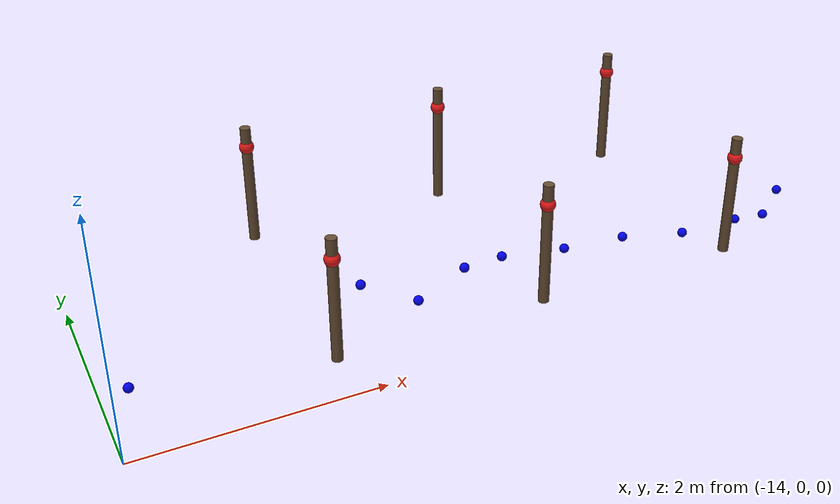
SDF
<sdf version="1.9">
 <world name="empty">
  <model name="row1_post_neg_4">
   <static>true</static>
   <pose>-8 1.1 -0.5 0 0 0</pose>
   <link name="vine_link">
    <collision name="post_collision">
     <geometry><cylinder><radius>0.05</radius><length>1.2</length></cylinder></geometry>
     <pose>0 0 0.6 0 0 0</pose>
    </collision>
    <visual name="post_visual">
     <geometry><cylinder><radius>0.05</radius><length>1.2</length></cylinder></geometry>
     <pose>0 0 0.6 0 0 0</pose>
     <material><diffuse>0.4 0.3 0.2 1</diffuse><ambient>0.4 0.3 0.2 1</ambient></material>
    </visual>
    <collision name="ball_collision">
     <geometry><sphere><radius>0.07</radius></sphere></geometry>
     <pose>0 0 1.0 0 0 0</pose>
    </collision>
    <visual name="ball_visual">
     <geometry><sphere><radius>0.07</radius></sphere></geometry>
     <pose>0 0 1.0 0 0 0</pose>
     <material><diffuse>0.9 0.1 0.1 1</diffuse><ambient>0.9 0.1 0.1 1</ambient></material>
    </visual>
   </link>
  </model>
  <model name="row1_post_neg_5">
   <static>true</static>
   <pose>-10 1.1 -0.5 0 0 0</pose>
   <link name="vine_link">
    <collision name="post_collision">
     <geometry><cylinder><radius>0.05</radius><length>1.2</length></cylinder></geometry>
     <pose>0 0 0.6 0 0 0</pose>
    </collision>
    <visual name="post_visual">
     <geometry><cylinder><radius>0.05</radius><length>1.2</length></cylinder></geometry>
     <pose>0 0 0.6 0 0 0</pose>
     <material><diffuse>0.4 0.3 0.2 1</diffuse><ambient>0.4 0.3 0.2 1</ambient></material>
    </visual>
    <collision name="ball_collision">
     <geometry><sphere><radius>0.07</radius></sphere></geometry>
     <pose>0 0 1.0 0 0 0</pose>
    </collision>
    <visual name="ball_visual">
     <geometry><sphere><radius>0.07</radius></sphere></geometry>
     <pose>0 0 1.0 0 0 0</pose>
     <material><diffuse>0.9 0.1 0.1 1</diffuse><ambient>0.9 0.1 0.1 1</ambient></material>
    </visual>
   </link>
  </model>
  <model name="row1_post_neg_6">
   <static>true</static>
   <pose>-12 1.1 -0.5 0 0 0</pose>
   <link name="vine_link">
    <collision name="post_collision">
     <geometry><cylinder><radius>0.05</radius><length>1.2</length></cylinder></geometry>
     <pose>0 0 0.6 0 0 0</pose>
    </collision>
    <visual name="post_visual">
     <geometry><cylinder><radius>0.05</radius><length>1.2</length></cylinder></geometry>
     <pose>0 0 0.6 0 0 0</pose>
     <material><diffuse>0.4 0.3 0.2 1</diffuse><ambient>0.4 0.3 0.2 1</ambient></material>
    </visual>
    <collision name="ball_collision">
     <geometry><sphere><radius>0.07</radius></sphere></geometry>
     <pose>0 0 1.0 0 0 0</pose>
    </collision>
    <visual name="ball_visual">
     <geometry><sphere><radius>0.07</radius></sphere></geometry>
     <pose>0 0 1.0 0 0 0</pose>
     <material><diffuse>0.9 0.1 0.1 1</diffuse><ambient>0.9 0.1 0.1 1</ambient></material>
    </visual>
   </link>
  </model>
  <model name="row3_post_neg_4">
   <static>true</static>
   <pose>-8 3.3 -0.5 0 0 0</pose>
   <link name="vine_link">
    <collision name="post_collision">
     <geometry><cylinder><radius>0.05</radius><length>1.2</length></cylinder></geometry>
     <pose>0 0 0.6 0 0 0</pose>
    </collision>
    <visual name="post_visual">
     <geometry><cylinder><radius>0.05</radius><length>1.2</length></cylinder></geometry>
     <pose>0 0 0.6 0 0 0</pose>
     <material><diffuse>0.4 0.3 0.2 1</diffuse><ambient>0.4 0.3 0.2 1</ambient></material>
    </visual>
    <collision name="ball_collision">
     <geometry><sphere><radius>0.07</radius></sphere></geometry>
     <pose>0 0 1.0 0 0 0</pose>
    </collision>
    <visual name="ball_visual">
     <geometry><sphere><radius>0.07</radius></sphere></geometry>
     <pose>0 0 1.0 0 0 0</pose>
     <material><diffuse>0.9 0.1 0.1 1</diffuse><ambient>0.9 0.1 0.1 1</ambient></material>
    </visual>
   </link>
  </model>
  <model name="row3_post_neg_5">
   <static>true</static>
   <pose>-10 3.3 -0.5 0 0 0</pose>
   <link name="vine_link">
    <collision name="post_collision">
     <geometry><cylinder><radius>0.05</radius><length>1.2</length></cylinder></geometry>
     <pose>0 0 0.6 0 0 0</pose>
    </collision>
    <visual name="post_visual">
     <geometry><cylinder><radius>0.05</radius><length>1.2</length></cylinder></geometry>
     <pose>0 0 0.6 0 0 0</pose>
     <material><diffuse>0.4 0.3 0.2 1</diffuse><ambient>0.4 0.3 0.2 1</ambient></material>
    </visual>
    <collision name="ball_collision">
     <geometry><sphere><radius>0.07</radius></sphere></geometry>
     <pose>0 0 1.0 0 0 0</pose>
    </collision>
    <visual name="ball_visual">
     <geometry><sphere><radius>0.07</radius></sphere></geometry>
     <pose>0 0 1.0 0 0 0</pose>
     <material><diffuse>0.9 0.1 0.1 1</diffuse><ambient>0.9 0.1 0.1 1</ambient></material>
    </visual>
   </link>
  </model>
  <model name="row3_post_neg_6">
   <static>true</static>
   <pose>-12 3.3 -0.5 0 0 0</pose>
   <link name="vine_link">
    <collision name="post_collision">
     <geometry><cylinder><radius>0.05</radius><length>1.2</length></cylinder></geometry>
     <pose>0 0 0.6 0 0 0</pose>
    </collision>
    <visual name="post_visual">
     <geometry><cylinder><radius>0.05</radius><length>1.2</length></cylinder></geometry>
     <pose>0 0 0.6 0 0 0</pose>
     <material><diffuse>0.4 0.3 0.2 1</diffuse><ambient>0.4 0.3 0.2 1</ambient></material>
    </visual>
    <collision name="ball_collision">
     <geometry><sphere><radius>0.07</radius></sphere></geometry>
     <pose>0 0 1.0 0 0 0</pose>
    </collision>
    <visual name="ball_visual">
     <geometry><sphere><radius>0.07</radius></sphere></geometry>
     <pose>0 0 1.0 0 0 0</pose>
     <material><diffuse>0.9 0.1 0.1 1</diffuse><ambient>0.9 0.1 0.1 1</ambient></material>
    </visual>
   </link>
  </model>
  <model name="row1_target_024">
   <static>true</static>
   <pose>-13.718 1.203 -0.283 0 0 0</pose>
   <link name="link">
    <collision name="collision"><geometry><sphere><radius>0.043</radius></sphere></geometry></collision>
    <visual name="visual">
     <geometry><sphere><radius>0.043</radius></sphere></geometry>
     <material><diffuse>0 0 0.9 1</diffuse><ambient>0 0 0.6 1</ambient></material>
    </visual>
   </link>
  </model>
  <model name="row1_target_028">
   <static>true</static>
   <pose>-11.715 1.227 0.092 0 0 0</pose>
   <link name="link">
    <collision name="collision"><geometry><sphere><radius>0.043</radius></sphere></geometry></collision>
    <visual name="visual">
     <geometry><sphere><radius>0.043</radius></sphere></geometry>
     <material><diffuse>0 0 0.9 1</diffuse><ambient>0 0 0.6 1</ambient></material>
    </visual>
   </link>
  </model>
  <model name="row1_target_030">
   <static>true</static>
   <pose>-11.280 1.019 -0.069 0 0 0</pose>
   <link name="link">
    <collision name="collision"><geometry><sphere><radius>0.043</radius></sphere></geometry></collision>
    <visual name="visual">
     <geometry><sphere><radius>0.043</radius></sphere></geometry>
     <material><diffuse>0 0 0.9 1</diffuse><ambient>0 0 0.6 1</ambient></material>
    </visual>
   </link>
  </model>
  <model name="row1_target_032">
   <static>true</static>
   <pose>-10.807 1.097 0.081 0 0 0</pose>
   <link name="link">
    <collision name="collision"><geometry><sphere><radius>0.043</radius></sphere></geometry></collision>
    <visual name="visual">
     <geometry><sphere><radius>0.043</radius></sphere></geometry>
     <material><diffuse>0 0 0.9 1</diffuse><ambient>0 0 0.6 1</ambient></material>
    </visual>
   </link>
  </model>
  <model name="row1_target_033">
   <static>true</static>
   <pose>-10.364 1.241 -0.008 0 0 0</pose>
   <link name="link">
    <collision name="collision"><geometry><sphere><radius>0.043</radius></sphere></geometry></collision>
    <visual name="visual">
     <geometry><sphere><radius>0.043</radius></sphere></geometry>
     <material><diffuse>0 0 0.9 1</diffuse><ambient>0 0 0.6 1</ambient></material>
    </visual>
   </link>
  </model>
  <model name="row1_target_034">
   <static>true</static>
   <pose>-9.218 1.061 -0.012 0 0 0</pose>
   <link name="link">
    <collision name="collision"><geometry><sphere><radius>0.043</radius></sphere></geometry></collision>
    <visual name="visual">
     <geometry><sphere><radius>0.043</radius></sphere></geometry>
     <material><diffuse>0 0 0.9 1</diffuse><ambient>0 0 0.6 1</ambient></material>
    </visual>
   </link>
  </model>
  <model name="row1_target_036">
   <static>true</static>
   <pose>-9.768 1.165 -0.044 0 0 0</pose>
   <link name="link">
    <collision name="collision"><geometry><sphere><radius>0.043</radius></sphere></geometry></collision>
    <visual name="visual">
     <geometry><sphere><radius>0.043</radius></sphere></geometry>
     <material><diffuse>0 0 0.9 1</diffuse><ambient>0 0 0.6 1</ambient></material>
    </visual>
   </link>
  </model>
  <model name="row1_target_037">
   <static>true</static>
   <pose>-8.560 1.042 -0.131 0 0 0</pose>
   <link name="link">
    <collision name="collision"><geometry><sphere><radius>0.043</radius></sphere></geometry></collision>
    <visual name="visual">
     <geometry><sphere><radius>0.043</radius></sphere></geometry>
     <material><diffuse>0 0 0.9 1</diffuse><ambient>0 0 0.6 1</ambient></material>
    </visual>
   </link>
  </model>
  <model name="row1_target_040">
   <static>true</static>
   <pose>-7.802 1.212 -0.270 0 0 0</pose>
   <link name="link">
    <collision name="collision"><geometry><sphere><radius>0.043</radius></sphere></geometry></collision>
    <visual name="visual">
     <geometry><sphere><radius>0.043</radius></sphere></geometry>
     <material><diffuse>0 0 0.9 1</diffuse><ambient>0 0 0.6 1</ambient></material>
    </visual>
   </link>
  </model>
  <model name="row1_target_041">
   <static>true</static>
   <pose>-7.641 1.018 -0.154 0 0 0</pose>
   <link name="link">
    <collision name="collision"><geometry><sphere><radius>0.043</radius></sphere></geometry></collision>
    <visual name="visual">
     <geometry><sphere><radius>0.043</radius></sphere></geometry>
     <material><diffuse>0 0 0.9 1</diffuse><ambient>0 0 0.6 1</ambient></material>
    </visual>
   </link>
  </model>
  <model name="row1_target_042">
   <static>true</static>
   <pose>-7.317 1.226 -0.068 0 0 0</pose>
   <link name="link">
    <collision name="collision"><geometry><sphere><radius>0.043</radius></sphere></geometry></collision>
    <visual name="visual">
     <geometry><sphere><radius>0.043</radius></sphere></geometry>
     <material><diffuse>0 0 0.9 1</diffuse><ambient>0 0 0.6 1</ambient></material>
    </visual>
   </link>
  </model>
 </world>
</sdf>
